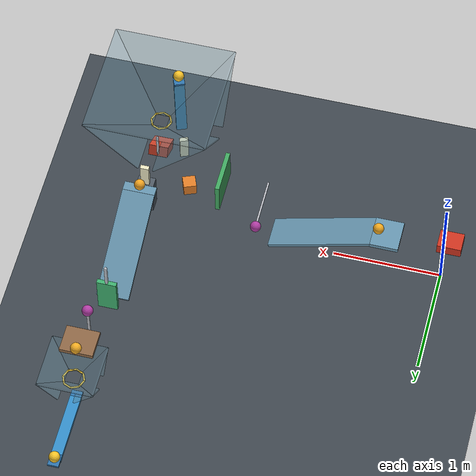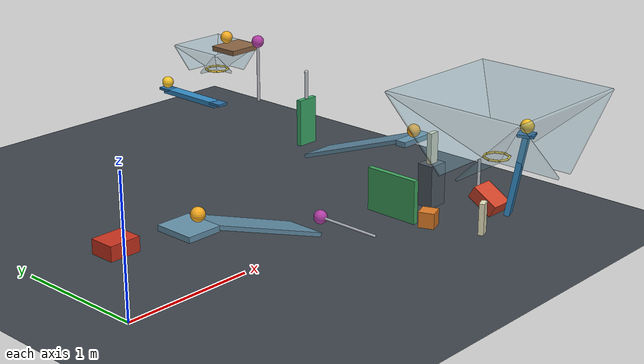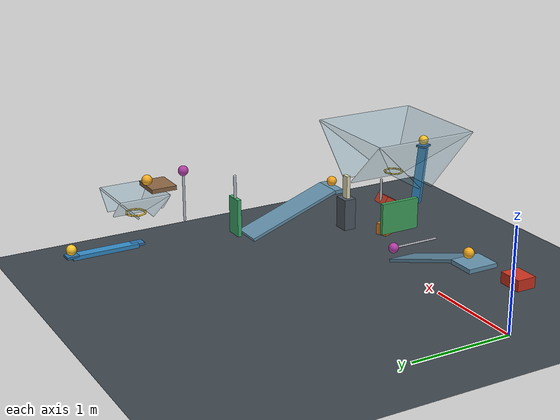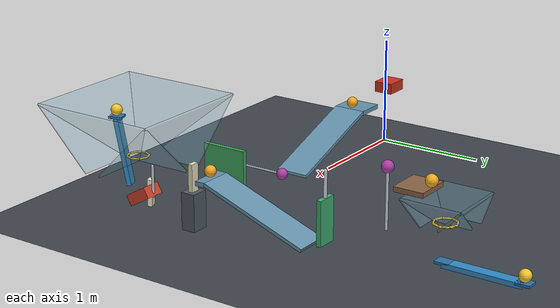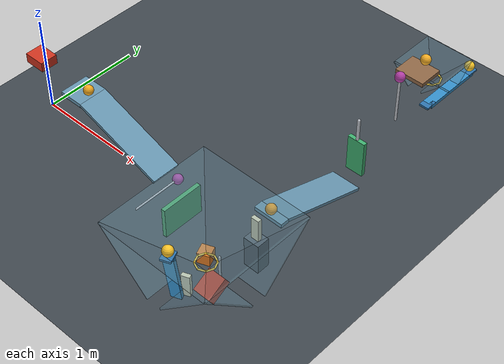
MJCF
<mujoco model="five_ball_mechanical_cascade">
  <compiler angle="degree" autolimits="true"/>
  <option timestep="0.002" gravity="0 0 -9.81" integrator="implicitfast" solver="Newton" iterations="100" tolerance="1e-10" cone="elliptic"/>
  <size njmax="3000" nconmax="1000"/>

  <worldbody>
    <light name="overhead_light" pos="1 0 6" dir="0 0 -1" directional="true"/>
    <geom name="floor" type="plane" pos="0 0 0" size="12 12 0.1" friction="0.68 0.001 0.0005" solref="0.006 0.69" solimp="0.95 0.99 0.001" rgba="0.24 0.27 0.30 1"/>

    <!-- Cart1 touches ball1 at slide displacement 0.50 m. -->
    <body name="cart1" pos="-0.06 0 0.542020">
      <inertial pos="0 0 0" mass="0.50" diaginertia="0.001766667 0.002433333 0.003366667"/>
      <joint name="cart1_slide" type="slide" axis="1 0 0" damping="0.20" range="0 0.56" solreflimit="0.004 1"/>
      <geom name="cart1_chassis" type="box" size="0.11 0.09 0.05" mass="0" friction="0.68 0.001 0.0005" solref="0.006 0.69" rgba="0.80 0.20 0.12 1"/>
    </body>

    <body name="ball1" pos="0.60 0 0.542020">
      <freejoint name="ball1_free"/>
      <geom name="ball1_sphere" type="sphere" size="0.05" mass="0.20" condim="6" friction="0.68 0.001 0.0005" solref="0.006 0.69" rgba="0.96 0.67 0.12 1"/>
    </body>

    <!-- Ramp1 top endpoints: (0.65, 0, 0.492020), (1.589693, 0, 0.15). -->
    <body name="ramp1" pos="1.114716 0 0.306915">
      <geom name="ramp1_incline" type="box" quat="0.984807753 0 0.173648178 0" size="0.50 0.15 0.015" friction="0.68 0.001 0.0005" solref="0.006 0.69" rgba="0.40 0.58 0.68 1"/>
      <geom name="ramp1_start_perch" type="box" pos="-0.594716 0 0.165105" size="0.13 0.15 0.02" friction="0.68 0.001 0.0005" solref="0.006 0.69" rgba="0.40 0.58 0.68 1"/>
    </body>

    <!-- Horizontal rigid pendulum, clockwise about its downward vertical axis. -->
    <body name="pendulum1" pos="1.739693 -0.50 0.18">
      <joint name="pendulum1_hinge" type="hinge" axis="0 0 -1" damping="0.04" range="0 85" solreflimit="0.004 1"/>
      <geom name="pendulum1_rod" type="capsule" fromto="0 0 0 0 0.50 0" size="0.009" mass="0.035" friction="0.68 0.001 0.0005" solref="0.006 0.69" rgba="0.75 0.76 0.79 1"/>
      <geom name="pendulum1_bob" type="sphere" pos="0 0.50 0" size="0.05" mass="0.315" friction="0.68 0.001 0.0005" solref="0.006 0.69" rgba="0.70 0.24 0.65 1"/>
    </body>

    <!-- Tilted hinge provides a gravity-assisted clockwise door swing. -->
    <body name="door1" pos="2.131086 -0.536978 0.32">
      <inertial pos="0 0.38 0" mass="0.45" diaginertia="0.0040 0.00384 0.00030"/>
      <joint name="door1_hinge" type="hinge" axis="0 0.4 -0.916515139" damping="0.04" range="0 70" solreflimit="0.003 1"/>
      <geom name="door1_panel" type="box" pos="0 0.21 0" size="0.02 0.21 0.16" mass="0" friction="0.68 0.001 0.0005" solref="0.006 0.69" rgba="0.25 0.65 0.37 1"/>
    </body>

    <body name="block1" pos="2.46916 -0.38833 0.06" quat="0.827380 0 0 -0.561642">
      <freejoint name="block1_free"/>
      <geom name="block1_cube" type="box" size="0.06 0.06 0.06" mass="0.35" friction="0.68 0.001 0.0005" solref="0.006 0.69" solimp="0.95 0.99 0.001" rgba="0.88 0.49 0.15 1"/>
    </body>

    <!-- Thin dimension follows the block's nominal travel direction. -->
    <body name="domino1" pos="2.61681 -0.76008 0.12" quat="0.827380 0 0 -0.561642">
      <freejoint name="domino1_free"/>
      <geom name="domino1_tile" type="box" size="0.02 0.04 0.12" mass="0.25" friction="0.68 0.001 0.0005" solref="0.006 0.69" rgba="0.91 0.89 0.75 1"/>
    </body>

    <!-- Initially steeply inclined lever with a level launch pad. -->
    <body name="lever1" pos="2.70249 -0.97580 0.475442" quat="0.633825 -0.361023 -0.531842 -0.430253">
      <inertial pos="0 0 0" mass="0.50" diaginertia="0.000483333 0.015066667 0.015416667"/>
      <joint name="lever1_hinge" type="hinge" axis="0 -1 0" damping="0.04" range="0 45" solreflimit="0.003 1"/>
      <geom name="lever1_beam" type="box" size="0.30 0.05 0.02" mass="0" friction="0.68 0.001 0.0005" solref="0.006 0.69" rgba="0.20 0.55 0.78 1"/>
      <geom name="lever1_launch_pad" type="box" pos="0.309848 0 0.001736" quat="0.766044443 0 0.642787610 0" size="0.06 0.05 0.01" mass="0" friction="0.68 0.001 0.0005" solref="0.006 0.69" rgba="0.18 0.45 0.67 1"/>
    </body>

    <body name="ball2" pos="2.72172 -1.02422 0.840884">
      <freejoint name="ball2_free"/>
      <geom name="ball2_sphere" type="sphere" size="0.05" mass="0.20" contype="3" conaffinity="3" condim="6" friction="0.68 0.001 0.0005" solref="0.006 0.69" rgba="0.98 0.77 0.16 1"/>
    </body>

    <!-- Collision bit 2 selects ball2's passive catcher and ring. -->
    <body name="ball2_catcher" pos="2.815 -0.718 0.515884">
      <geom name="ball2_catcher_positive_x" type="box" pos="0.32 0 0.25" quat="0.923879533 0 -0.382683432 0" size="0.353553391 0.57 0.008" contype="2" conaffinity="2" friction="0.68 0.001 0.0005" solref="0.006 0.69" rgba="0.45 0.64 0.72 0.35"/>
      <geom name="ball2_catcher_negative_x" type="box" pos="-0.32 0 0.25" quat="0.923879533 0 0.382683432 0" size="0.353553391 0.57 0.008" contype="2" conaffinity="2" friction="0.68 0.001 0.0005" solref="0.006 0.69" rgba="0.45 0.64 0.72 0.35"/>
      <geom name="ball2_catcher_positive_y" type="box" pos="0 0.32 0.25" quat="0.923879533 0.382683432 0 0" size="0.57 0.353553391 0.008" contype="2" conaffinity="2" friction="0.68 0.001 0.0005" solref="0.006 0.69" rgba="0.45 0.64 0.72 0.35"/>
      <geom name="ball2_catcher_negative_y" type="box" pos="0 -0.32 0.25" quat="0.923879533 -0.382683432 0 0" size="0.57 0.353553391 0.008" contype="2" conaffinity="2" friction="0.68 0.001 0.0005" solref="0.006 0.69" rgba="0.45 0.64 0.72 0.35"/>
    </body>

    <!-- Octagonal capsule ring: minimum clear diameter approximately 0.160 m. -->
    <body name="ring1" pos="2.815 -0.718 0.520884">
      <geom name="ring1_segment0" type="capsule" fromto="0.0952505 0 0 0.0673522 0.0673522 0" size="0.008" contype="2" conaffinity="2" friction="0.68 0.001 0.0005" solref="0.006 0.69" rgba="0.95 0.79 0.21 1"/>
      <geom name="ring1_segment1" type="capsule" fromto="0.0673522 0.0673522 0 0 0.0952505 0" size="0.008" contype="2" conaffinity="2" friction="0.68 0.001 0.0005" solref="0.006 0.69" rgba="0.95 0.79 0.21 1"/>
      <geom name="ring1_segment2" type="capsule" fromto="0 0.0952505 0 -0.0673522 0.0673522 0" size="0.008" contype="2" conaffinity="2" friction="0.68 0.001 0.0005" solref="0.006 0.69" rgba="0.95 0.79 0.21 1"/>
      <geom name="ring1_segment3" type="capsule" fromto="-0.0673522 0.0673522 0 -0.0952505 0 0" size="0.008" contype="2" conaffinity="2" friction="0.68 0.001 0.0005" solref="0.006 0.69" rgba="0.95 0.79 0.21 1"/>
      <geom name="ring1_segment4" type="capsule" fromto="-0.0952505 0 0 -0.0673522 -0.0673522 0" size="0.008" contype="2" conaffinity="2" friction="0.68 0.001 0.0005" solref="0.006 0.69" rgba="0.95 0.79 0.21 1"/>
      <geom name="ring1_segment5" type="capsule" fromto="-0.0673522 -0.0673522 0 0 -0.0952505 0" size="0.008" contype="2" conaffinity="2" friction="0.68 0.001 0.0005" solref="0.006 0.69" rgba="0.95 0.79 0.21 1"/>
      <geom name="ring1_segment6" type="capsule" fromto="0 -0.0952505 0 0.0673522 -0.0673522 0" size="0.008" contype="2" conaffinity="2" friction="0.68 0.001 0.0005" solref="0.006 0.69" rgba="0.95 0.79 0.21 1"/>
      <geom name="ring1_segment7" type="capsule" fromto="0.0673522 -0.0673522 0 0.0952505 0 0" size="0.008" contype="2" conaffinity="2" friction="0.68 0.001 0.0005" solref="0.006 0.69" rgba="0.95 0.79 0.21 1"/>
    </body>

    <!-- Tilted chassis converts downward impact into positive-y slide motion. -->
    <body name="cart2" pos="2.815 -0.668 0.184281">
      <inertial pos="0 0 0" mass="0.50" diaginertia="0.002433333 0.001766667 0.003366667"/>
      <joint name="cart2_slide" type="slide" axis="0 1 0" damping="0.20" range="0 0.44" solreflimit="0.004 1"/>
      <geom name="cart2_chassis" type="box" quat="0.965925826 0.258819045 0 0" size="0.09 0.11 0.05" mass="0" friction="0.68 0.001 0.0005" solref="0.006 0.69" rgba="0.82 0.26 0.16 1"/>
      <geom name="cart2_striker" type="capsule" fromto="0 0.10 0 0 0.10 0.27" size="0.012" mass="0" friction="0.68 0.001 0.0005" solref="0.006 0.69" rgba="0.75 0.77 0.80 1"/>
    </body>

    <body name="domino2_platform" pos="2.815 -0.136 0.165">
      <geom name="domino2_platform_top" type="box" size="0.08 0.065 0.165" friction="0.68 0.001 0.0005" solref="0.006 0.69" rgba="0.31 0.35 0.39 1"/>
    </body>

    <body name="domino2" pos="2.815 -0.136 0.45">
      <freejoint name="domino2_free"/>
      <geom name="domino2_tile" type="box" size="0.04 0.02 0.12" mass="0.25" friction="0.68 0.001 0.0005" solref="0.006 0.69" rgba="0.91 0.89 0.75 1"/>
    </body>

    <body name="ball3" pos="2.815 0.044 0.542020">
      <freejoint name="ball3_free"/>
      <geom name="ball3_sphere" type="sphere" size="0.05" mass="0.20" condim="6" friction="0.68 0.001 0.0005" solref="0.006 0.69" rgba="0.96 0.65 0.13 1"/>
    </body>

    <!-- Ramp2 top endpoints: (2.815, 0.094, 0.492020), (2.815, 1.033693, 0.15). -->
    <body name="ramp2" pos="2.815 0.558716 0.306915">
      <geom name="ramp2_incline" type="box" quat="0.984807753 -0.173648178 0 0" size="0.15 0.50 0.015" friction="0.68 0.001 0.0005" solref="0.006 0.69" rgba="0.40 0.58 0.68 1"/>
      <geom name="ramp2_start_perch" type="box" pos="0 -0.509716 0.165105" size="0.15 0.045 0.02" friction="0.68 0.001 0.0005" solref="0.006 0.69" rgba="0.40 0.58 0.68 1"/>
    </body>

    <!-- Upright flap is gravity-neutral at reset and tips forward after impact. -->
    <body name="flap1" pos="2.815 1.153693 0.18">
      <inertial pos="0 0 0.19" mass="0.28" diaginertia="0.003406667 0.004126667 0.000793333"/>
      <joint name="flap1_hinge" type="hinge" axis="-1 0 0" damping="0.04" range="0 60" solreflimit="0.003 1"/>
      <geom name="flap1_panel" type="box" pos="0 0 0.19" size="0.09 0.02 0.19" mass="0" friction="0.68 0.001 0.0005" solref="0.006 0.69" rgba="0.24 0.68 0.43 1"/>
      <geom name="flap1_striker" type="capsule" fromto="0 0 0.35 0 0 0.60" size="0.015" mass="0" friction="0.68 0.001 0.0005" solref="0.006 0.69" rgba="0.75 0.77 0.80 1"/>
    </body>

    <!-- Inverted rigid pendulum; gravity assists once displaced by flap1. -->
    <body name="pendulum2" pos="2.815 1.700308 0.43">
      <joint name="pendulum2_hinge" type="hinge" axis="-1 0 0" damping="0.04" range="0 38" solreflimit="0.003 1"/>
      <geom name="pendulum2_rod" type="capsule" fromto="0 0 0 0 0 0.50" size="0.012" mass="0.04" friction="0.68 0.001 0.0005" solref="0.006 0.69" rgba="0.75 0.76 0.79 1"/>
      <geom name="pendulum2_bob" type="sphere" pos="0 0 0.50" size="0.05" mass="0.31" friction="0.68 0.001 0.0005" solref="0.006 0.69" rgba="0.70 0.24 0.65 1"/>
    </body>

    <!-- Shelf top is at z = 0.85 m. -->
    <body name="shelf1" pos="2.815 1.963137 0.83">
      <geom name="shelf1_board" type="box" size="0.15 0.125 0.02" friction="0.68 0.001 0.0005" solref="0.006 0.69" rgba="0.55 0.40 0.27 1"/>
    </body>

    <body name="ball4" pos="2.815 2.073137 0.90">
      <freejoint name="ball4_free"/>
      <geom name="ball4_sphere" type="sphere" size="0.05" mass="0.20" contype="5" conaffinity="5" condim="6" friction="0.68 0.001 0.0005" solref="0.006 0.69" rgba="0.96 0.68 0.14 1"/>
    </body>

    <!-- Collision bit 4 selects ball4's passive catcher and ring. -->
    <body name="ball4_catcher" pos="2.815 2.20 0.63">
      <geom name="ball4_catcher_positive_x" type="box" pos="0.16 0 0.09" quat="0.923879533 0 -0.382683432 0" size="0.127279221 0.25 0.008" contype="4" conaffinity="4" friction="0.68 0.001 0.0005" solref="0.006 0.69" rgba="0.45 0.64 0.72 0.35"/>
      <geom name="ball4_catcher_negative_x" type="box" pos="-0.16 0 0.09" quat="0.923879533 0 0.382683432 0" size="0.127279221 0.25 0.008" contype="4" conaffinity="4" friction="0.68 0.001 0.0005" solref="0.006 0.69" rgba="0.45 0.64 0.72 0.35"/>
      <geom name="ball4_catcher_positive_y" type="box" pos="0 0.16 0.09" quat="0.923879533 0.382683432 0 0" size="0.25 0.127279221 0.008" contype="4" conaffinity="4" friction="0.68 0.001 0.0005" solref="0.006 0.69" rgba="0.45 0.64 0.72 0.35"/>
      <geom name="ball4_catcher_negative_y" type="box" pos="0 -0.16 0.09" quat="0.923879533 -0.382683432 0 0" size="0.25 0.127279221 0.008" contype="4" conaffinity="4" friction="0.68 0.001 0.0005" solref="0.006 0.69" rgba="0.45 0.64 0.72 0.35"/>
    </body>

    <body name="ring2" pos="2.815 2.20 0.60">
      <geom name="ring2_segment0" type="capsule" fromto="0.0952505 0 0 0.0673522 0.0673522 0" size="0.008" contype="4" conaffinity="4" friction="0.68 0.001 0.0005" solref="0.006 0.69" rgba="0.95 0.79 0.21 1"/>
      <geom name="ring2_segment1" type="capsule" fromto="0.0673522 0.0673522 0 0 0.0952505 0" size="0.008" contype="4" conaffinity="4" friction="0.68 0.001 0.0005" solref="0.006 0.69" rgba="0.95 0.79 0.21 1"/>
      <geom name="ring2_segment2" type="capsule" fromto="0 0.0952505 0 -0.0673522 0.0673522 0" size="0.008" contype="4" conaffinity="4" friction="0.68 0.001 0.0005" solref="0.006 0.69" rgba="0.95 0.79 0.21 1"/>
      <geom name="ring2_segment3" type="capsule" fromto="-0.0673522 0.0673522 0 -0.0952505 0 0" size="0.008" contype="4" conaffinity="4" friction="0.68 0.001 0.0005" solref="0.006 0.69" rgba="0.95 0.79 0.21 1"/>
      <geom name="ring2_segment4" type="capsule" fromto="-0.0952505 0 0 -0.0673522 -0.0673522 0" size="0.008" contype="4" conaffinity="4" friction="0.68 0.001 0.0005" solref="0.006 0.69" rgba="0.95 0.79 0.21 1"/>
      <geom name="ring2_segment5" type="capsule" fromto="-0.0673522 -0.0673522 0 0 -0.0952505 0" size="0.008" contype="4" conaffinity="4" friction="0.68 0.001 0.0005" solref="0.006 0.69" rgba="0.95 0.79 0.21 1"/>
      <geom name="ring2_segment6" type="capsule" fromto="0 -0.0952505 0 0.0673522 -0.0673522 0" size="0.008" contype="4" conaffinity="4" friction="0.68 0.001 0.0005" solref="0.006 0.69" rgba="0.95 0.79 0.21 1"/>
      <geom name="ring2_segment7" type="capsule" fromto="0.0673522 -0.0673522 0 0.0952505 0 0" size="0.008" contype="4" conaffinity="4" friction="0.68 0.001 0.0005" solref="0.006 0.69" rgba="0.95 0.79 0.21 1"/>
    </body>

    <!-- Left contact center is z = 0.35, 0.25 m below ring2. -->
    <body name="seesaw1" pos="2.815 2.525 0.28">
      <inertial pos="0 0 0" mass="0.55" diaginertia="0.019437917 0.000531667 0.019822917"/>
      <joint name="seesaw1_hinge" type="hinge" axis="1 0 0" damping="0.04" range="0 42" solreflimit="0.003 1"/>
      <geom name="seesaw1_beam" type="box" size="0.05 0.325 0.02" mass="0" friction="0.68 0.001 0.0005" solref="0.006 0.69" rgba="0.20 0.55 0.78 1"/>
      <geom name="seesaw1_left_pad" type="box" pos="0 -0.325 0.01" size="0.05 0.06 0.01" mass="0" friction="0.68 0.001 0.0005" solref="0.006 0.69" rgba="0.18 0.45 0.67 1"/>
      <geom name="seesaw1_right_pad" type="box" pos="0 0.325 0.01" size="0.05 0.06 0.01" mass="0" friction="0.68 0.001 0.0005" solref="0.006 0.69" rgba="0.18 0.45 0.67 1"/>
    </body>

    <body name="ball5" pos="2.815 2.85 0.35">
      <freejoint name="ball5_free"/>
      <geom name="ball5_sphere" type="sphere" size="0.05" mass="0.20" condim="6" friction="0.68 0.001 0.0005" solref="0.006 0.69" rgba="0.98 0.78 0.16 1"/>
    </body>
  </worldbody>

  <tendon>
    <fixed name="cart1_compression_spring" stiffness="18" damping="0" springlength="0.20 10">
      <joint joint="cart1_slide" coef="1"/>
    </fixed>
  </tendon>

  <actuator>
    <motor name="block1_substatic_assist" joint="block1_free" gear="0.369116 -0.929383 0 0 0 0" ctrllimited="true" ctrlrange="0 2.30"/>
  </actuator>

  <keyframe>
    <key name="start" ctrl="2.25"/>
  </keyframe>
</mujoco>
